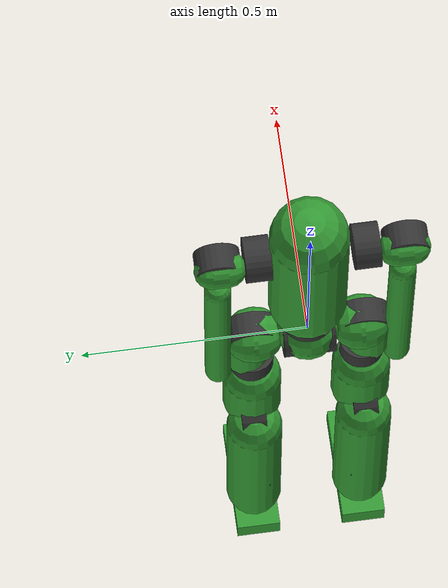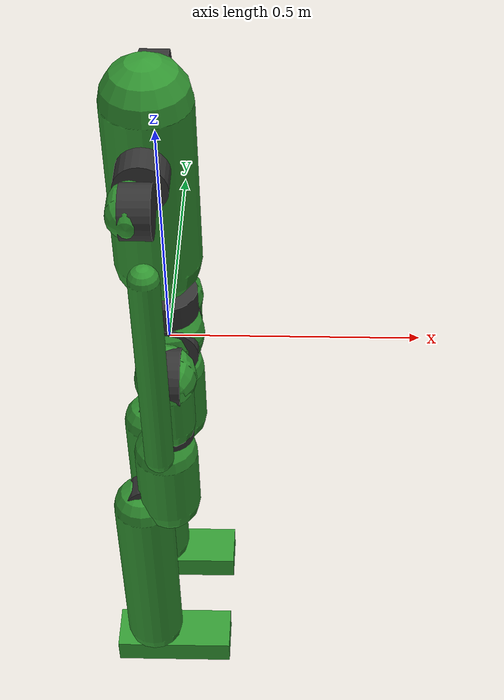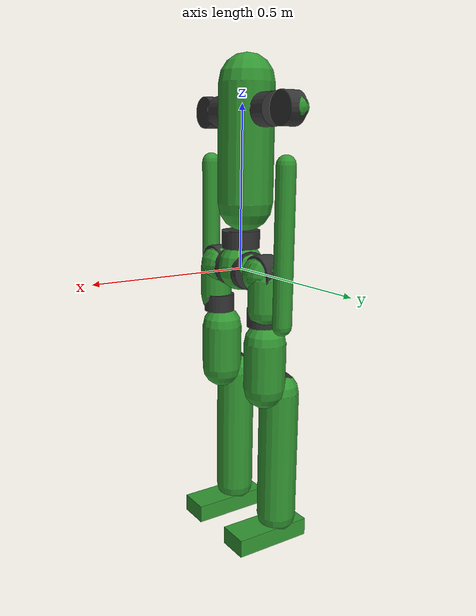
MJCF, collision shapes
<mujoco model="pygmalion_v4_printed">
  <compiler angle="radian" meshdir="assets_v2/"/>

  <default>
    <default class="pygmalion">
      <site group="5" rgba="1 0 0 1"/>
      <default class="visual">
        <geom type="mesh" contype="0" conaffinity="0" group="2" density="0" material="silver"/>
      </default>
      <default class="collision">
        <geom type="capsule" group="3" rgba="0.2 0.6 0.2 0.3"/>
        <default class="foot_capsule">
          <geom size="0.01 0 0"/>
        </default>
        <default class="foot_box">
          <geom type="box"/>
        </default>
      </default>
      <default class="hull">
        <geom type="mesh" contype="0" conaffinity="0" group="4" density="0" material="hull"/>
      </default>
    </default>
  </default>

  <asset>
    <material name="silver" rgba="0.7 0.7 0.7 1"/>
    <material name="hull" rgba="0.2 0.4 0.9 0.25"/>
    <material name="black" rgba="0.2 0.2 0.2 1"/>
    <material name="red" rgba="1 0 0 1"/>
    <mesh name="pelvis" file="pelvis.stl"/>
    <mesh name="pelvis_hull" file="pelvis_hull.stl"/>
    <mesh name="L_hip_pitch_link" file="hip_pitch_link.stl"/>
    <mesh name="L_hip_pitch_link_hull" file="hip_pitch_link_hull.stl"/>
    <mesh name="L_hip_roll_link" file="hip_roll_link.stl"/>
    <mesh name="L_hip_roll_link_hull" file="hip_roll_link_hull.stl"/>
    <mesh name="L_thigh" file="thigh.stl"/>
    <mesh name="L_thigh_hull" file="thigh_hull.stl"/>
    <mesh name="L_shin" file="shin.stl"/>
    <mesh name="L_shin_hull" file="shin_hull.stl"/>
    <mesh name="L_foot" file="foot.stl"/>
    <mesh name="L_foot_hull" file="foot_hull.stl"/>
    <mesh name="R_hip_pitch_link" file="R_hip_pitch_link.stl"/>
    <mesh name="R_hip_pitch_link_hull" file="R_hip_pitch_link_hull.stl"/>
    <mesh name="R_hip_roll_link" file="R_hip_roll_link.stl"/>
    <mesh name="R_hip_roll_link_hull" file="R_hip_roll_link_hull.stl"/>
    <mesh name="R_thigh" file="R_thigh.stl"/>
    <mesh name="R_thigh_hull" file="R_thigh_hull.stl"/>
    <mesh name="R_shin" file="R_shin.stl"/>
    <mesh name="R_shin_hull" file="R_shin_hull.stl"/>
    <mesh name="R_foot" file="R_foot.stl"/>
    <mesh name="R_foot_hull" file="R_foot_hull.stl"/>
    <mesh name="torso" file="torso.stl"/>
    <mesh name="torso_hull" file="torso_hull.stl"/>
    <mesh name="L_torso_shpitch" file="torso_shpitch.stl"/>
    <mesh name="L_shoulder_pitch_link" file="shoulder_pitch_link.stl"/>
    <mesh name="L_shoulder_pitch_link_hull" file="shoulder_pitch_link_hull.stl"/>
    <mesh name="L_arm" file="arm.stl"/>
    <mesh name="L_arm_hull" file="arm_hull.stl"/>
    <mesh name="R_torso_shpitch" file="R_torso_shpitch.stl"/>
    <mesh name="R_shoulder_pitch_link" file="R_shoulder_pitch_link.stl"/>
    <mesh name="R_shoulder_pitch_link_hull" file="R_shoulder_pitch_link_hull.stl"/>
    <mesh name="R_arm" file="R_arm.stl"/>
    <mesh name="R_arm_hull" file="R_arm_hull.stl"/>
  </asset>

  <worldbody>
    <body name="base_link" childclass="pygmalion">
      <inertial pos="0.000579519 -0.00134141 0.0307872" quat="0.751544 -0.0112586 0.0161549 0.659389" mass="4.8405" diaginertia="0.0184034 0.0182054 0.0112877"/>
      <joint name="root" type="free"/>
      <geom class="visual" mesh="pelvis"/>
      <geom name="pelvis_hull" class="hull" mesh="pelvis_hull"/>
      <geom name="L_hip_pitch_motor" class="visual" size="0.06 0.0278" pos="0.00065 -0.02962 -0.00044" quat="0.707107 -0.707107 0 0" type="cylinder" material="black"/>
      <geom name="waist_yaw_motor" class="visual" size="0.06 0.0278" pos="0.00053 0.00058 0.09393" type="cylinder" material="black"/>
      <geom name="R_hip_pitch_motor" class="visual" size="0.06 0.0278" pos="0.00065 0.02962 -0.00044" quat="0.707107 0.707107 0 0" type="cylinder" material="black"/>
      <geom name="base_pelvis_collision" class="collision" size="0.071434 0.005" pos="-0.0007 0.0003 0.0074" quat="0 1 0 0"/>
      <site name="imu_in_base" pos="-1e-06 0.007078 -0.0695" size="0.03"/>
      <body name="L_hip_pitch_link" pos="0 -0.1237 0">
        <inertial pos="0.00137371 0.00686121 0.000902732" quat="0.667369 0.744699 0.0029734 0.0058286" mass="1.7829" diaginertia="0.00411451 0.00293348 0.00262384"/>
        <joint name="L_hip_pitch_joint" pos="0 0 0" axis="0 1 0" range="-2.0944 0.436332"/>
        <geom class="visual" mesh="L_hip_pitch_link"/>
        <geom name="L_hip_pitch_link_hull" class="hull" mesh="L_hip_pitch_link_hull"/>
        <geom name="L_hip_roll_motor" class="visual" size="0.06 0.0278" pos="0.00317 0.00061 0.00049" quat="0.707107 0 -0.707107 0" type="cylinder" material="black"/>
        <geom name="L_hip_pitch_link_collision" class="collision" size="0.0614 0.005" pos="-0.0006 0.0053 -0.0018" quat="0.707107 0.707107 0 0"/>
        <body name="L_hip_roll_link">
          <inertial pos="0.00097096 -0.00144805 -0.119924" quat="0.636537 0.061764 0.0109942 0.76869" mass="1.2868" diaginertia="0.00330392 0.00323674 0.00186877"/>
          <joint name="L_hip_roll_joint" pos="0 0 0" axis="1 0 0" range="-1.48353 0.436332"/>
          <geom class="visual" mesh="L_hip_roll_link"/>
          <geom name="L_hip_roll_link_hull" class="hull" mesh="L_hip_roll_link_hull"/>
          <geom name="L_hip_yaw_motor" class="visual" size="0.0495 0.0283" pos="6e-05 3e-05 -0.13303" type="cylinder" material="black"/>
          <geom name="L_hip_roll_link_collision" class="collision" size="0.0514137 0.0496" pos="0.0039 -0.0121 -0.0614" quat="0 1 0 0"/>
          <body name="L_thigh_link">
            <inertial pos="-0.0355152 -0.00136508 -0.334013" quat="0.703803 0.0842244 0.089709 0.699657" mass="2.0704" diaginertia="0.0148058 0.0133465 0.00328274"/>
            <joint name="L_hip_yaw_joint" pos="0 0 0" axis="0 0 -1" range="-0.785398 0.785398"/>
            <geom class="visual" mesh="L_thigh"/>
            <geom name="L_thigh_link_hull" class="hull" mesh="L_thigh_hull"/>
            <geom name="L_knee_motor" class="visual" size="0.06 0.0278" pos="-0.04495 -0.00318 -0.36922" quat="0.707107 -0.707107 0 0" type="cylinder" material="black"/>
            <geom name="L_thigh_link_collision" class="collision" size="0.0659 0.0741" pos="-0.0111 0.0005 -0.29" quat="0 1 0 0"/>
            <body name="L_shin_link" pos="-0.045 0 -0.37">
              <inertial pos="-0.0301144 -0.000284604 -0.235788" quat="0.711376 0.0282916 0.0342065 0.701409" mass="2.6451" diaginertia="0.0241625 0.0233166 0.00354213"/>
              <joint name="L_knee_joint" pos="0 0 0" axis="0 -1 0" range="-2.0944 0"/>
              <geom class="visual" mesh="L_shin"/>
              <geom name="L_shin_link_hull" class="hull" mesh="L_shin_hull"/>
              <geom name="L_ankle_b_motor" class="visual" size="0.0495 0.0283" pos="-0.02994 -0.00172 -0.19003" quat="0.707107 -0.707107 0 0" type="cylinder" material="black"/>
              <geom name="L_ankle_a_motor" class="visual" size="0.0495 0.0283" pos="-0.03006 0.00172 -0.29003" quat="0.707107 -0.707107 0 0" type="cylinder" material="black"/>
              <geom name="L_shin_link_collision" class="collision" size="0.0635 0.21535" pos="-0.024 -0.0009 -0.23315" quat="0 1 0 0"/>
              <body name="L_ankle_pitch_link" pos="-0.03 0 -0.49">
                <inertial pos="0 0 0" quat="0.704099 0.706852 0.0478426 -0.0481354" mass="0.040016" diaginertia="1.4589e-05 1.42389e-05 3.95844e-06"/>
                <joint name="L_ankle_pitch_joint" pos="0 0 0" axis="0 -1 0" range="-0.872665 0.523599"/>
                <body name="L_foot_link">
                  <inertial pos="0.00823549 0.00273084 -0.0109679" quat="0.424998 0.554057 0.652605 0.294116" mass="0.4241" diaginertia="0.00290681 0.00236817 0.00122932"/>
                  <joint name="L_ankle_roll_joint" pos="0 0 0" axis="-1 0 0" range="-0.349066 0.349066"/>
                  <geom class="visual" mesh="L_foot"/>
                  <geom name="L_foot_link_hull" class="hull" mesh="L_foot_hull"/>
                  <geom name="L_foot1_collision" class="foot_box" size="0.13 0.05 0.029" pos="0.05 0 -0.014"/>
                  <site name="left_foot" pos="0.05 0 -0.043" size="0.01"/>
                </body>
              </body>
            </body>
          </body>
        </body>
      </body>
      <body name="R_hip_pitch_link" pos="0 0.1237 0">
        <inertial pos="0.00137371 -0.00686121 0.000902732" quat="0.744699 0.667369 -0.0058286 -0.0029734" mass="1.7829" diaginertia="0.00411451 0.00293348 0.00262384"/>
        <joint name="R_hip_pitch_joint" pos="0 0 0" axis="0 1 0" range="-2.0944 0.436332"/>
        <geom class="visual" mesh="R_hip_pitch_link"/>
        <geom name="R_hip_pitch_link_hull" class="hull" mesh="R_hip_pitch_link_hull"/>
        <geom name="R_hip_roll_motor" class="visual" size="0.06 0.0278" pos="0.00317 -0.00061 0.00049" quat="0.707107 0 -0.707107 0" type="cylinder" material="black"/>
        <geom name="R_hip_pitch_link_collision" class="collision" size="0.0614 0.005" pos="-0.0006 -0.0053 -0.0018" quat="0.707107 0.707107 0 0"/>
        <body name="R_hip_roll_link">
          <inertial pos="0.00097096 0.00144805 -0.119924" quat="0.76869 0.0109942 0.061764 0.636537" mass="1.2868" diaginertia="0.00330392 0.00323674 0.00186877"/>
          <joint name="R_hip_roll_joint" pos="0 0 0" axis="-1 0 0" range="-1.48353 0.436332"/>
          <geom class="visual" mesh="R_hip_roll_link"/>
          <geom name="R_hip_roll_link_hull" class="hull" mesh="R_hip_roll_link_hull"/>
          <geom name="R_hip_yaw_motor" class="visual" size="0.0495 0.0283" pos="6e-05 -3e-05 -0.13303" type="cylinder" material="black"/>
          <geom name="R_hip_roll_link_collision" class="collision" size="0.0508203 0.0496" pos="0.0039 0.0121 -0.0614" quat="0 1 0 0"/>
          <body name="R_thigh_link">
            <inertial pos="-0.0355152 0.00136508 -0.334013" quat="0.699657 0.089709 0.0842244 0.703803" mass="2.0704" diaginertia="0.0148058 0.0133465 0.00328274"/>
            <joint name="R_hip_yaw_joint" pos="0 0 0" axis="0 0 -1" range="-0.785398 0.785398"/>
            <geom class="visual" mesh="R_thigh"/>
            <geom name="R_thigh_link_hull" class="hull" mesh="R_thigh_hull"/>
            <geom name="R_knee_motor" class="visual" size="0.06 0.0278" pos="-0.04495 0.00318 -0.36922" quat="0.707107 0.707107 0 0" type="cylinder" material="black"/>
            <geom name="R_thigh_link_collision" class="collision" size="0.0659 0.0741" pos="-0.0111 -0.0005 -0.29" quat="0 1 0 0"/>
            <body name="R_shin_link" pos="-0.045 0 -0.37">
              <inertial pos="-0.0301144 0.000284604 -0.235788" quat="0.701409 0.0342065 0.0282916 0.711376" mass="2.6451" diaginertia="0.0241625 0.0233166 0.00354213"/>
              <joint name="R_knee_joint" pos="0 0 0" axis="0 -1 0" range="-2.0944 0"/>
              <geom class="visual" mesh="R_shin"/>
              <geom name="R_shin_link_hull" class="hull" mesh="R_shin_hull"/>
              <geom name="R_ankle_b_motor" class="visual" size="0.0495 0.0283" pos="-0.02994 0.00172 -0.19003" quat="0.707107 0.707107 0 0" type="cylinder" material="black"/>
              <geom name="R_ankle_a_motor" class="visual" size="0.0495 0.0283" pos="-0.03006 -0.00172 -0.29003" quat="0.707107 0.707107 0 0" type="cylinder" material="black"/>
              <geom name="R_shin_link_collision" class="collision" size="0.0635 0.21535" pos="-0.024 0.0009 -0.23315" quat="0 1 0 0"/>
              <body name="R_ankle_pitch_link" pos="-0.03 0 -0.49">
                <inertial pos="0 0 0" quat="0.706852 0.704099 0.0481354 -0.0478426" mass="0.040016" diaginertia="1.4589e-05 1.42389e-05 3.95844e-06"/>
                <joint name="R_ankle_pitch_joint" pos="0 0 0" axis="0 -1 0" range="-0.872665 0.523599"/>
                <body name="R_foot_link">
                  <inertial pos="0.00823549 -0.00273084 -0.0109679" quat="0.294116 0.652605 0.554057 0.424998" mass="0.4241" diaginertia="0.00290681 0.00236817 0.00122932"/>
                  <joint name="R_ankle_roll_joint" pos="0 0 0" axis="1 0 0" range="-0.349066 0.349066"/>
                  <geom class="visual" mesh="R_foot"/>
                  <geom name="R_foot_link_hull" class="hull" mesh="R_foot_hull"/>
                  <geom name="R_foot1_collision" class="foot_box" size="0.13 0.05 0.029" pos="0.05 0 -0.014"/>
                  <site name="right_foot" pos="0.05 0 -0.043" size="0.01"/>
                </body>
              </body>
            </body>
          </body>
        </body>
      </body>
      <body name="torso_link" pos="0 0 0.1175">
        <inertial pos="-0.0146615 -4.92559e-05 0.282153" quat="0.999907 0.00372007 0.0131067 1.79839e-05" mass="5.8697" diaginertia="0.150597 0.122992 0.0388999"/>
        <joint name="waist_yaw_joint" pos="0 0 0" axis="0 0 1" range="-1.0472 1.0472"/>
        <geom class="visual" mesh="torso"/>
        <geom name="torso_hull" class="hull" mesh="torso_hull"/>
        <geom class="visual" material="black" mesh="L_torso_shpitch"/>
        <geom class="visual" material="black" mesh="R_torso_shpitch"/>
        <geom name="L_shoulder_pitch_motor" class="visual" size="0.0495 0.0283" pos="-0.01506 -0.11603 0.36253" quat="0.707107 -0.707107 0 0" type="cylinder" material="black"/>
        <geom name="neck_pitch_motor" class="visual" size="0.0285 0.0257" pos="-0.005 -0.00211 0.4795" quat="0.707107 -0.707107 0 0" type="cylinder" material="black"/>
        <geom name="neck_yaw_motor" class="visual" size="0.0418 0.0227" pos="-0.005 2e-05 0.41983" type="cylinder" material="black"/>
        <geom name="R_shoulder_pitch_motor" class="visual" size="0.0495 0.0283" pos="-0.01506 0.11603 0.36253" quat="0.707107 0.707107 0 0" type="cylinder" material="black"/>
        <geom name="torso_collision" class="collision" size="0.0857 0.17845" pos="-0.0121 0.0045 0.26415" quat="0 1 0 0"/>
        <body name="L_shoulder_pitch_link" pos="-0.015 -0.2 0.3625">
          <inertial pos="-0.00448671 0.0018377 -0.0212538" quat="0.994629 0.0277319 -0.00252498 -0.0996929" mass="1.6043" diaginertia="0.00538209 0.00503845 0.00217049"/>
          <joint name="L_shoulder_pitch_joint" pos="0 0 0" axis="0 1 0" range="-3.14159 1.0472"/>
          <geom class="visual" mesh="L_shoulder_pitch_link"/>
          <geom name="L_shoulder_pitch_link_hull" class="hull" mesh="L_shoulder_pitch_link_hull"/>
          <geom name="L_shoulder_roll_motor" class="visual" size="0.0495 0.0283" pos="-0.00172 -6e-05 3e-05" quat="0.707107 0 -0.707107 0" type="cylinder" material="black"/>
          <geom name="L_shoulder_pitch_link_collision" class="collision" size="0.0391 0.01715" pos="-0.0158 0.00375 0.0006" quat="0.707107 0.707107 0 0"/>
          <body name="L_arm_link">
            <inertial pos="-0.00510106 0 -0.37003" quat="0.706969 -0.0139463 -0.0139463 0.706969" mass="0.44942" diaginertia="0.0217103 0.0216696 0.000143813"/>
            <joint name="L_shoulder_roll_joint" pos="0 0 0" axis="1 0 0" range="-0.558505 0.523599"/>
            <geom class="visual" mesh="L_arm"/>
            <geom name="L_arm_link_hull" class="hull" mesh="L_arm_hull"/>
            <geom name="L_arm_link_collision" class="collision" size="0.0296 0.23615" pos="-0.0003 0.0001 -0.39125" quat="0 1 0 0"/>
          </body>
        </body>
        <body name="R_shoulder_pitch_link" pos="-0.015 0.2 0.3625">
          <inertial pos="-0.00448671 -0.0018377 -0.0212538" quat="0.994629 -0.0277319 -0.00252498 0.0996929" mass="1.6043" diaginertia="0.00538209 0.00503845 0.00217049"/>
          <joint name="R_shoulder_pitch_joint" pos="0 0 0" axis="0 1 0" range="-3.14159 1.0472"/>
          <geom class="visual" mesh="R_shoulder_pitch_link"/>
          <geom name="R_shoulder_pitch_link_hull" class="hull" mesh="R_shoulder_pitch_link_hull"/>
          <geom name="R_shoulder_roll_motor" class="visual" size="0.0495 0.0283" pos="-0.00172 6e-05 3e-05" quat="0.707107 0 -0.707107 0" type="cylinder" material="black"/>
          <geom name="R_shoulder_pitch_link_collision" class="collision" size="0.0391 0.01715" pos="-0.0158 -0.00375 0.0006" quat="0.707107 0.707107 0 0"/>
          <body name="R_arm_link">
            <inertial pos="-0.00510106 0 -0.37003" quat="0.706969 -0.0139463 -0.0139463 0.706969" mass="0.44942" diaginertia="0.0217103 0.0216696 0.000143813"/>
            <joint name="R_shoulder_roll_joint" pos="0 0 0" axis="-1 0 0" range="-0.558505 0.523599"/>
            <geom class="visual" mesh="R_arm"/>
            <geom name="R_arm_link_hull" class="hull" mesh="R_arm_hull"/>
            <geom name="R_arm_link_collision" class="collision" size="0.0296 0.23615" pos="-0.0003 -0.0001 -0.39125" quat="0 1 0 0"/>
          </body>
        </body>
      </body>
    </body>
  </worldbody>

  <contact>
    <exclude body1="base_link" body2="L_hip_pitch_link"/>
    <exclude body1="base_link" body2="R_hip_pitch_link"/>
    <exclude body1="base_link" body2="torso_link"/>
    <exclude body1="L_hip_pitch_link" body2="L_hip_roll_link"/>
    <exclude body1="L_hip_pitch_link" body2="L_arm_link"/>
    <exclude body1="L_hip_roll_link" body2="L_thigh_link"/>
    <exclude body1="L_hip_roll_link" body2="L_arm_link"/>
    <exclude body1="L_thigh_link" body2="L_shin_link"/>
    <exclude body1="L_shin_link" body2="L_ankle_pitch_link"/>
    <exclude body1="L_shin_link" body2="L_foot_link"/>
    <exclude body1="L_ankle_pitch_link" body2="L_foot_link"/>
    <exclude body1="R_hip_pitch_link" body2="R_hip_roll_link"/>
    <exclude body1="R_hip_pitch_link" body2="R_arm_link"/>
    <exclude body1="R_hip_roll_link" body2="R_thigh_link"/>
    <exclude body1="R_hip_roll_link" body2="R_arm_link"/>
    <exclude body1="R_thigh_link" body2="R_shin_link"/>
    <exclude body1="R_shin_link" body2="R_ankle_pitch_link"/>
    <exclude body1="R_shin_link" body2="R_foot_link"/>
    <exclude body1="R_ankle_pitch_link" body2="R_foot_link"/>
    <exclude body1="torso_link" body2="L_shoulder_pitch_link"/>
    <exclude body1="torso_link" body2="R_shoulder_pitch_link"/>
    <exclude body1="L_shoulder_pitch_link" body2="L_arm_link"/>
    <exclude body1="R_shoulder_pitch_link" body2="R_arm_link"/>
  </contact>

  <sensor>
    <gyro site="imu_in_base" name="imu_ang_vel"/>
    <velocimeter site="imu_in_base" name="imu_lin_vel"/>
    <accelerometer site="imu_in_base" name="imu_lin_acc"/>
    <framezaxis objtype="body" objname="world" reftype="site" refname="imu_in_base" name="imu_upvector"/>
    <subtreeangmom body="base_link" name="root_angmom"/>
  </sensor>
</mujoco>
